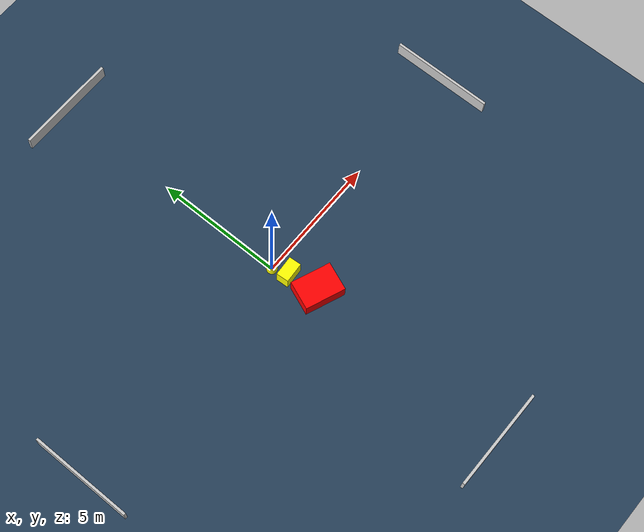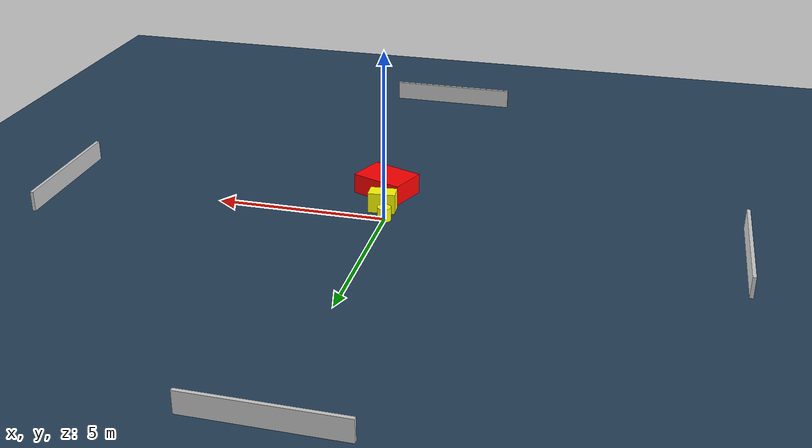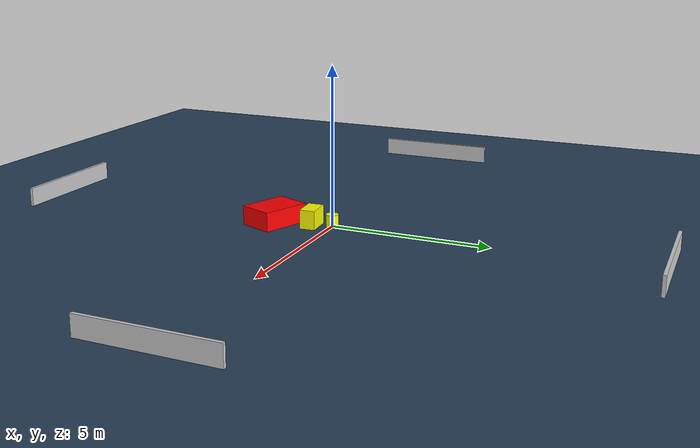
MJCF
<?xml version="1.0" ?>
<mujoco model="generated_environment">
  <option timestep="0.01" integrator="RK4" cone="elliptic"/>
  <default>
    <geom density="1"/>
  </default>
  <asset>
    <texture builtin="gradient" height="3072" name="skybox" rgb1="0.3 0.5 0.7" rgb2="0 0 0" type="skybox" width="512"/>
    <texture builtin="checker" height="300" name="groundplane" rgb1="0.2 0.3 0.4" rgb2="0.1 0.2 0.3" type="2d" width="300"/>
    <material name="groundplane" reflectance="0.2" texrepeat="5 5" texture="groundplane"/>
  </asset>
  <worldbody>
    <light dir="0 0 -1" directional="true" pos="0 0 1.5"/>
    <geom condim="3" friction="0.5 0.005 0.001" material="groundplane" name="floor" pos="0 0 0" size="0 0 0.05" type="plane"/>
    <body name="walls">
      <geom name="wall_1" condim="4" pos="-10.0 0.0 0.3" rgba="0.800000011920929 0.800000011920929 0.800000011920929 1.0" size="0.05 2.0 0.3" type="box"/>
      <geom name="wall_2" condim="4" pos="10.0 0.0 0.3" rgba="0.800000011920929 0.800000011920929 0.800000011920929 1.0" size="0.05 2.0 0.3" type="box"/>
      <geom name="wall_3" condim="4" pos="0.0 -10.0 0.3" rgba="0.800000011920929 0.800000011920929 0.800000011920929 1.0" size="2.0 0.05 0.3" type="box"/>
      <geom name="wall_4" condim="4" pos="0.0 10.0 0.3" rgba="0.800000011920929 0.800000011920929 0.800000011920929 1.0" size="2.0 0.05 0.3" type="box"/>
    </body>
    <body name="robot">
      <joint name="joint_x" type="slide" pos="0 0 0" axis="1 0 0"/>
      <joint name="joint_y" type="slide" pos="0 0 0" axis="0 1 0"/>
      <geom name="robot" type="cylinder" pos="0.0 0.0 0.2" size="0.2 0.2 0.0" mass="5.0" friction="1.0 0.005 0.0001" condim="4" rgba="1.0 1.0 0.0 1.0"/>
    </body>
    <body name="obstacle_1_movable">
      <geom name="obstacle_1_movable" condim="4" pos="0.20132398472749274 -0.6127214308170034 0.3" euler="0 0 273.8199362417329" friction="0.0 0.005 0.001" rgba="1.0 1.0 0.0 1.0" size="0.2400185387399627 0.395029315468828 0.3" type="box" mass="0.1"/>
      <joint type="free"/>
    </body>
    <body name="obstacle_2_static">
      <geom name="obstacle_2_static" condim="4" pos="0.3842447389286284 -1.8071187046920583 0.3" euler="0 0 68.25680895601661" friction="0.0 0.005 0.001" rgba="1.0 0.0 0.0 1.0" size="0.5647295176386244 0.789048991163305 0.3" type="box"/>
    </body>
  </worldbody>
  <actuator>
    <motor name="actuator_x" joint="joint_x" gear="1" ctrlrange="-1 1"/>
    <motor name="actuator_y" joint="joint_y" gear="1" ctrlrange="-1 1"/>
  </actuator>
</mujoco>
